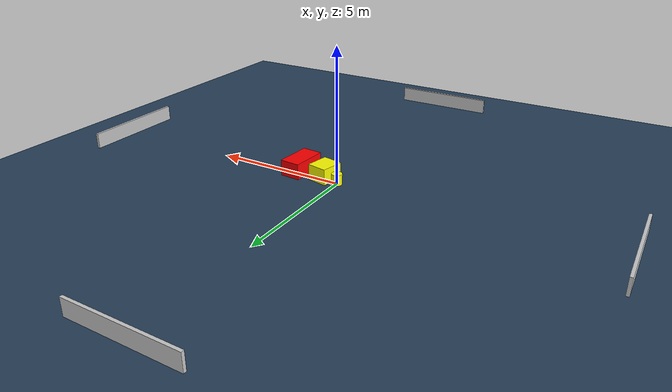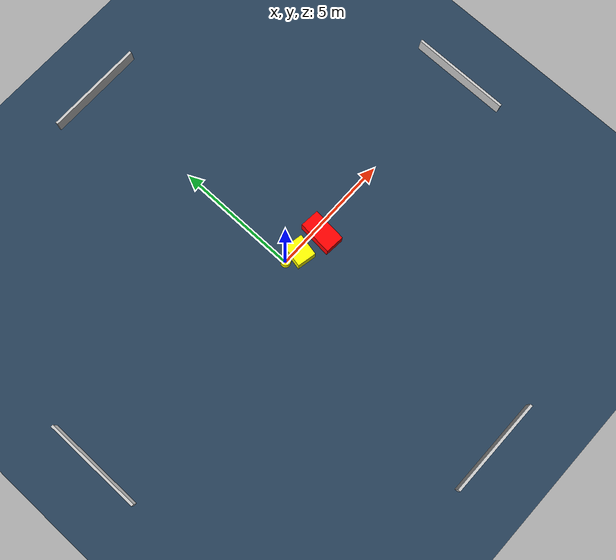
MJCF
<?xml version="1.0" ?>
<mujoco model="generated_environment">
  <option timestep="0.01" integrator="RK4" cone="elliptic"/>
  <default>
    <geom density="1"/>
  </default>
  <asset>
    <texture builtin="gradient" height="3072" name="skybox" rgb1="0.3 0.5 0.7" rgb2="0 0 0" type="skybox" width="512"/>
    <texture builtin="checker" height="300" name="groundplane" rgb1="0.2 0.3 0.4" rgb2="0.1 0.2 0.3" type="2d" width="300"/>
    <material name="groundplane" reflectance="0.2" texrepeat="5 5" texture="groundplane"/>
  </asset>
  <worldbody>
    <light dir="0 0 -1" directional="true" pos="0 0 1.5"/>
    <geom condim="3" friction="0.5 0.005 0.001" material="groundplane" name="floor" pos="0 0 0" size="0 0 0.05" type="plane"/>
    <body name="walls">
      <geom name="wall_1" condim="4" pos="-10.0 0.0 0.3" rgba="0.800000011920929 0.800000011920929 0.800000011920929 1.0" size="0.05 2.0 0.3" type="box"/>
      <geom name="wall_2" condim="4" pos="10.0 0.0 0.3" rgba="0.800000011920929 0.800000011920929 0.800000011920929 1.0" size="0.05 2.0 0.3" type="box"/>
      <geom name="wall_3" condim="4" pos="0.0 -10.0 0.3" rgba="0.800000011920929 0.800000011920929 0.800000011920929 1.0" size="2.0 0.05 0.3" type="box"/>
      <geom name="wall_4" condim="4" pos="0.0 10.0 0.3" rgba="0.800000011920929 0.800000011920929 0.800000011920929 1.0" size="2.0 0.05 0.3" type="box"/>
    </body>
    <body name="robot">
      <joint name="joint_x" type="slide" pos="0 0 0" axis="1 0 0"/>
      <joint name="joint_y" type="slide" pos="0 0 0" axis="0 1 0"/>
      <geom name="robot" type="cylinder" pos="0.0 0.0 0.2" size="0.2 0.2 0.0" mass="5.0" friction="1.0 0.005 0.0001" condim="4" rgba="1.0 1.0 0.0 1.0"/>
    </body>
    <body name="obstacle_1_movable">
      <geom name="obstacle_1_movable" condim="4" pos="0.6030310206542793 -0.16335263268305805 0.3" euler="0 0 258.5750711643603" friction="0.0 0.005 0.001" rgba="1.0 1.0 0.0 1.0" size="0.44110340385203295 0.38517785363899604 0.3" type="box" mass="0.1"/>
      <joint type="free"/>
    </body>
    <body name="obstacle_2_static">
      <geom name="obstacle_2_static" condim="4" pos="1.694355608659617 -0.27995509905617316 0.3" euler="0 0 265.24948148016193" friction="0.0 0.005 0.001" rgba="1.0 0.0 0.0 1.0" size="0.6899442355314889 0.3837527455340337 0.3" type="box"/>
    </body>
  </worldbody>
  <actuator>
    <motor name="actuator_x" joint="joint_x" gear="1" ctrlrange="-1 1"/>
    <motor name="actuator_y" joint="joint_y" gear="1" ctrlrange="-1 1"/>
  </actuator>
</mujoco>
